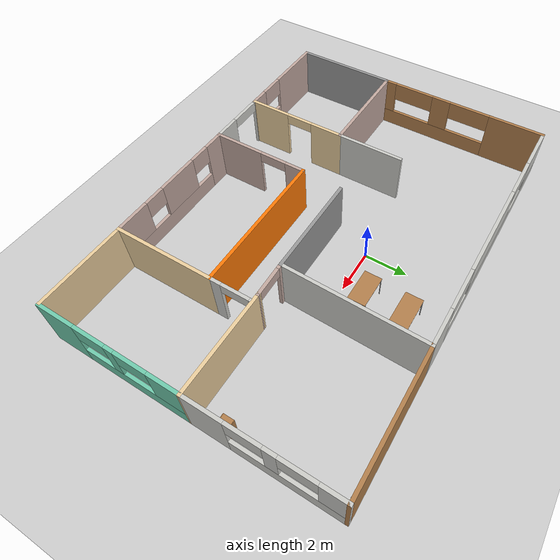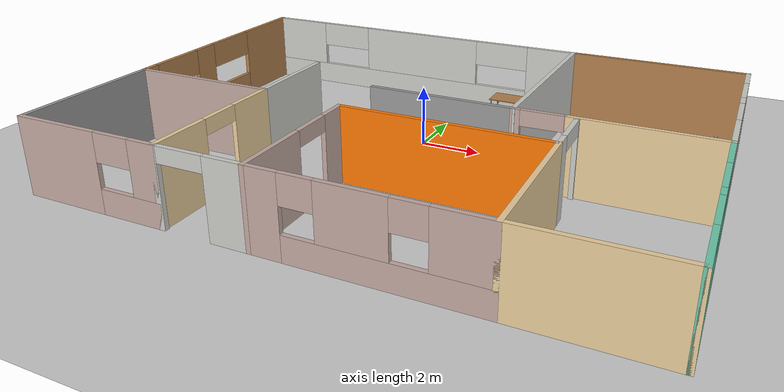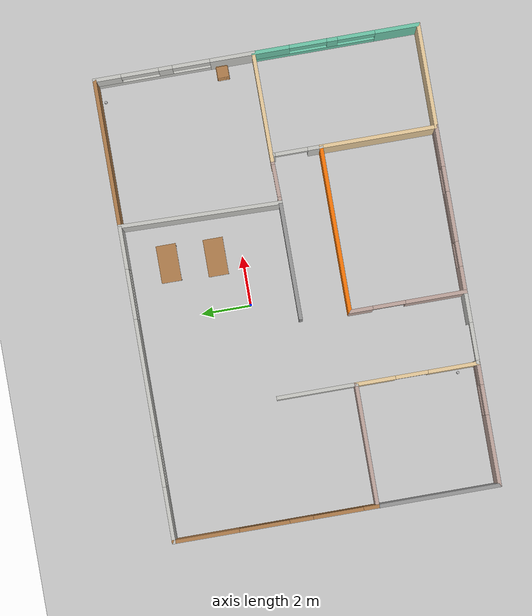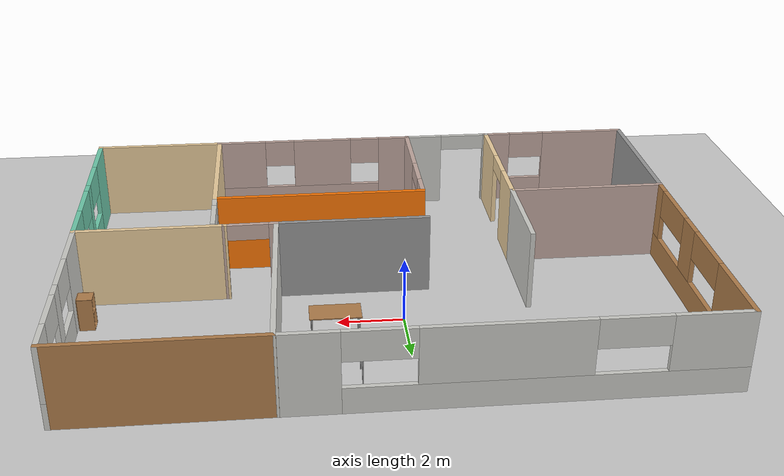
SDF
<sdf version="1.7">
 <world name="default">
  <light name="sun" type="directional">
   <pose>0 0 10 0 -0 0</pose>
   <diffuse>0.8 0.8 0.8 1</diffuse>
   <specular>0.2 0.2 0.2 1</specular>
   <attenuation>
    <range>1000</range>
    <constant>0.9</constant>
    <linear>0.01</linear>
    <quadratic>0.001</quadratic>
   </attenuation>
   <direction>-0.5 0.1 -0.9</direction>
   <spot><inner_angle>0</inner_angle><outer_angle>0</outer_angle><falloff>0</falloff></spot>
  </light>
  <model name="ground_plane">
   <static>1</static>
   <link name="link">
    <collision name="collision">
     <geometry><plane><normal>0 0 1</normal><size>100 100</size></plane></geometry>
     <surface>
      <contact><collide_bitmask>65535</collide_bitmask></contact>
      <friction><ode><mu>100</mu><mu2>50</mu2></ode></friction>
     </surface>
    </collision>
    <visual name="visual">
     <cast_shadows>0</cast_shadows>
     <geometry><plane><normal>0 0 1</normal><size>100 100</size></plane></geometry>
     <material>
      <script><uri>file://media/materials/scripts/gazebo.material</uri><name>Gazebo/Grey</name></script>
     </material>
    </visual>
   </link>
  </model>
  <gravity>0 0 -9.8</gravity>
  <magnetic_field>6e-06 2.3e-05 -4.2e-05</magnetic_field>
  <atmosphere type="adiabatic"/>
  <physics type="ode">
   <max_step_size>0.001</max_step_size>
   <real_time_factor>1</real_time_factor>
   <real_time_update_rate>1000</real_time_update_rate>
  </physics>
  <scene><ambient>0.4 0.4 0.4 1</ambient><background>0.7 0.7 0.7 1</background><shadows>1</shadows></scene>
  <spherical_coordinates>
   <surface_model>EARTH_WGS84</surface_model>
   <latitude_deg>0</latitude_deg>
   <longitude_deg>0</longitude_deg>
   <elevation>0</elevation>
   <heading_deg>0</heading_deg>
  </spherical_coordinates>
  <model name="NewBuilding">
   <pose>0.49773 -1.92823 0 0 -0 0</pose>
   <link name="Wall_0">
    <pose>-9.20011 2.42413 0 0 -0 -1.5708</pose>
    <visual name="Wall_0_Visual_0">
     <pose>-2.78268 0 1.25 0 -0 0</pose>
     <geometry><box><size>2.68465 0.15 2.5</size></box></geometry>
     <material>
      <script><uri>file://media/materials/scripts/gazebo.material</uri><name>Gazebo/Wood</name></script>
      <ambient>0.435294 0.796078 0.67451 1</ambient>
     </material>
     <meta><layer>0</layer></meta>
    </visual>
    <collision name="Wall_0_Collision_0">
     <geometry><box><size>2.68465 0.15 2.5</size></box></geometry>
     <pose>-2.78268 0 1.25 0 -0 0</pose>
    </collision>
    <visual name="Wall_0_Visual_1">
     <pose>1.34232 0 0.4 0 -0 0</pose>
     <geometry><box><size>5.56535 0.15 0.8</size></box></geometry>
     <material>
      <script><uri>file://media/materials/scripts/gazebo.material</uri><name>Gazebo/Wood</name></script>
      <ambient>0.435294 0.796078 0.67451 1</ambient>
     </material>
     <meta><layer>0</layer></meta>
    </visual>
    <collision name="Wall_0_Collision_1">
     <geometry><box><size>5.56535 0.15 0.8</size></box></geometry>
     <pose>1.34232 0 0.4 0 -0 0</pose>
    </collision>
    <visual name="Wall_0_Visual_2">
     <pose>1.02798 0 1.65 0 -0 0</pose>
     <geometry><box><size>0.936662 0.15 1.7</size></box></geometry>
     <material>
      <script><uri>file://media/materials/scripts/gazebo.material</uri><name>Gazebo/Wood</name></script>
      <ambient>0.435294 0.796078 0.67451 1</ambient>
     </material>
     <meta><layer>0</layer></meta>
    </visual>
    <collision name="Wall_0_Collision_2">
     <geometry><box><size>0.936662 0.15 1.7</size></box></geometry>
     <pose>1.02798 0 1.65 0 -0 0</pose>
    </collision>
    <visual name="Wall_0_Visual_3">
     <pose>3.81065 0 1.65 0 -0 0</pose>
     <geometry><box><size>0.628691 0.15 1.7</size></box></geometry>
     <material>
      <script><uri>file://media/materials/scripts/gazebo.material</uri><name>Gazebo/Wood</name></script>
      <ambient>0.435294 0.796078 0.67451 1</ambient>
     </material>
     <meta><layer>0</layer></meta>
    </visual>
    <collision name="Wall_0_Collision_3">
     <geometry><box><size>0.628691 0.15 1.7</size></box></geometry>
     <pose>3.81065 0 1.65 0 -0 0</pose>
    </collision>
    <visual name="Wall_0_Visual_4">
     <pose>-0.440353 0 2.05 0 -0 0</pose>
     <geometry><box><size>2 0.15 0.9</size></box></geometry>
     <material>
      <script><uri>file://media/materials/scripts/gazebo.material</uri><name>Gazebo/Wood</name></script>
      <ambient>0.435294 0.796078 0.67451 1</ambient>
     </material>
     <meta><layer>0</layer></meta>
    </visual>
    <collision name="Wall_0_Collision_4">
     <geometry><box><size>2 0.15 0.9</size></box></geometry>
     <pose>-0.440353 0 2.05 0 -0 0</pose>
    </collision>
    <visual name="Wall_0_Visual_5">
     <pose>2.49631 0 2.05 0 -0 0</pose>
     <geometry><box><size>2 0.15 0.9</size></box></geometry>
     <material>
      <script><uri>file://media/materials/scripts/gazebo.material</uri><name>Gazebo/Wood</name></script>
      <ambient>0.435294 0.796078 0.67451 1</ambient>
     </material>
     <meta><layer>0</layer></meta>
    </visual>
    <collision name="Wall_0_Collision_5">
     <geometry><box><size>2 0.15 0.9</size></box></geometry>
     <pose>2.49631 0 2.05 0 -0 0</pose>
    </collision>
   </link>
   <link name="Wall_1">
    <collision name="Wall_1_Collision">
     <geometry><box><size>5 0.15 2.5</size></box></geometry>
     <pose>0 0 1.25 0 -0 0</pose>
    </collision>
    <visual name="Wall_1_Visual">
     <pose>0 0 1.25 0 -0 0</pose>
     <geometry><box><size>5 0.15 2.5</size></box></geometry>
     <material>
      <script><uri>file://media/materials/scripts/gazebo.material</uri><name>Gazebo/Grey</name></script>
      <ambient>0.180392 0.203922 0.211765 1</ambient>
     </material>
     <meta><layer>0</layer></meta>
    </visual>
    <pose>-9.20011 -4.05087 0 0 -0 -1.5708</pose>
   </link>
   <link name="Wall_11">
    <collision name="Wall_11_Collision">
     <geometry><box><size>5 0.15 2.5</size></box></geometry>
     <pose>0 0 1.25 0 -0 0</pose>
    </collision>
    <visual name="Wall_11_Visual">
     <pose>0 0 1.25 0 -0 0</pose>
     <geometry><box><size>5 0.15 2.5</size></box></geometry>
     <material>
      <script><uri>file://media/materials/scripts/gazebo.material</uri><name>Gazebo/Grey</name></script>
      <ambient>0.760784 0.662745 0.627451 1</ambient>
     </material>
     <meta><layer>0</layer></meta>
    </visual>
    <pose>-6.77511 -1.62587 0 0 -0 0</pose>
   </link>
   <link name="Wall_12">
    <pose>-4.35011 -4.05087 0 0 -0 -1.5708</pose>
    <visual name="Wall_12_Visual_0">
     <pose>-1.68305 0 1.25 0 -0 0</pose>
     <geometry><box><size>1.63391 0.15 2.5</size></box></geometry>
     <material>
      <script><uri>file://media/materials/scripts/gazebo.material</uri><name>Gazebo/Grey</name></script>
      <ambient>0.921569 0.807843 0.615686 1</ambient>
     </material>
     <meta><layer>0</layer></meta>
    </visual>
    <collision name="Wall_12_Collision_0">
     <geometry><box><size>1.63391 0.15 2.5</size></box></geometry>
     <pose>-1.68305 0 1.25 0 -0 0</pose>
    </collision>
    <visual name="Wall_12_Visual_1">
     <pose>1.46695 0 1.25 0 -0 0</pose>
     <geometry><box><size>2.06609 0.15 2.5</size></box></geometry>
     <material>
      <script><uri>file://media/materials/scripts/gazebo.material</uri><name>Gazebo/Grey</name></script>
      <ambient>0.921569 0.807843 0.615686 1</ambient>
     </material>
     <meta><layer>0</layer></meta>
    </visual>
    <collision name="Wall_12_Collision_1">
     <geometry><box><size>2.06609 0.15 2.5</size></box></geometry>
     <pose>1.46695 0 1.25 0 -0 0</pose>
    </collision>
    <visual name="Wall_12_Visual_2">
     <pose>-0.216093 0 2.25 0 -0 0</pose>
     <geometry><box><size>1.3 0.15 0.5</size></box></geometry>
     <material>
      <script><uri>file://media/materials/scripts/gazebo.material</uri><name>Gazebo/Grey</name></script>
      <ambient>0.921569 0.807843 0.615686 1</ambient>
     </material>
     <meta><layer>0</layer></meta>
    </visual>
    <collision name="Wall_12_Collision_2">
     <geometry><box><size>1.3 0.15 0.5</size></box></geometry>
     <pose>-0.216093 0 2.25 0 -0 0</pose>
    </collision>
   </link>
   <link name="Wall_14">
    <collision name="Wall_14_Collision">
     <geometry><box><size>3.25 0.15 2.5</size></box></geometry>
     <pose>0 0 1.25 0 -0 0</pose>
    </collision>
    <visual name="Wall_14_Visual">
     <pose>0 0 1.25 0 -0 0</pose>
     <geometry><box><size>3.25 0.15 2.5</size></box></geometry>
     <material>
      <script><uri>file://media/materials/scripts/gazebo.material</uri><name>Gazebo/CeilingTiled</name></script>
      <ambient>0.996078 0.47451 0.0196078 1</ambient>
     </material>
     <meta><layer>0</layer></meta>
    </visual>
    <pose>-4.35011 -0.075866 0 0 -0 1.5708</pose>
   </link>
   <link name="Wall_16">
    <pose>-1.50011 -4.17587 0 0 -0 1.5708</pose>
    <visual name="Wall_16_Visual_0">
     <pose>-1.14312 0 1.25 0 -0 0</pose>
     <geometry><box><size>2.46377 0.15 2.5</size></box></geometry>
     <material>
      <script><uri>file://media/materials/scripts/gazebo.material</uri><name>Gazebo/Grey</name></script>
      <ambient>0.760784 0.662745 0.627451 1</ambient>
     </material>
     <meta><layer>0</layer></meta>
    </visual>
    <collision name="Wall_16_Collision_0">
     <geometry><box><size>2.46377 0.15 2.5</size></box></geometry>
     <pose>-1.14312 0 1.25 0 -0 0</pose>
    </collision>
    <visual name="Wall_16_Visual_1">
     <pose>1.88188 0 1.25 0 -0 0</pose>
     <geometry><box><size>0.986234 0.15 2.5</size></box></geometry>
     <material>
      <script><uri>file://media/materials/scripts/gazebo.material</uri><name>Gazebo/Grey</name></script>
      <ambient>0.760784 0.662745 0.627451 1</ambient>
     </material>
     <meta><layer>0</layer></meta>
    </visual>
    <collision name="Wall_16_Collision_1">
     <geometry><box><size>0.986234 0.15 2.5</size></box></geometry>
     <pose>1.88188 0 1.25 0 -0 0</pose>
    </collision>
    <visual name="Wall_16_Visual_2">
     <pose>0.738766 0 2.25 0 -0 0</pose>
     <geometry><box><size>1.3 0.15 0.5</size></box></geometry>
     <material>
      <script><uri>file://media/materials/scripts/gazebo.material</uri><name>Gazebo/Grey</name></script>
      <ambient>0.760784 0.662745 0.627451 1</ambient>
     </material>
     <meta><layer>0</layer></meta>
    </visual>
    <collision name="Wall_16_Collision_2">
     <geometry><box><size>1.3 0.15 0.5</size></box></geometry>
     <pose>0.738766 0 2.25 0 -0 0</pose>
    </collision>
   </link>
   <link name="Wall_17">
    <collision name="Wall_17_Collision">
     <geometry><box><size>6.75 0.15 2.5</size></box></geometry>
     <pose>0 0 1.25 0 -0 0</pose>
    </collision>
    <visual name="Wall_17_Visual">
     <pose>0 0 1.25 0 -0 0</pose>
     <geometry><box><size>6.75 0.15 2.5</size></box></geometry>
     <material>
      <script><uri>file://media/materials/scripts/gazebo.material</uri><name>Gazebo/Grey</name></script>
      <ambient>0.996078 0.47451 0.0196078 1</ambient>
     </material>
     <meta><layer>0</layer></meta>
    </visual>
    <pose>1.79989 -1.87587 0 0 -0 0</pose>
   </link>
   <link name="Wall_18">
    <collision name="Wall_18_Collision">
     <geometry><box><size>4.75 0.15 2.5</size></box></geometry>
     <pose>0 0 1.25 0 -0 0</pose>
    </collision>
    <visual name="Wall_18_Visual">
     <pose>0 0 1.25 0 -0 0</pose>
     <geometry><box><size>4.75 0.15 2.5</size></box></geometry>
     <material>
      <script><uri>file://media/materials/scripts/gazebo.material</uri><name>Gazebo/Grey</name></script>
      <ambient>0.921569 0.807843 0.615686 1</ambient>
     </material>
     <meta><layer>0</layer></meta>
    </visual>
    <pose>5.09989 -4.17587 0 0 -0 -1.5708</pose>
   </link>
   <link name="Wall_2">
    <pose>-6.77511 -6.47587 0 0 -0 0</pose>
    <visual name="Wall_2_Visual_0">
     <pose>-1.06474 0 1.25 0 -0 0</pose>
     <geometry><box><size>2.87052 0.15 2.5</size></box></geometry>
     <material>
      <script><uri>file://media/materials/scripts/gazebo.material</uri><name>Gazebo/Grey</name></script>
      <ambient>0.760784 0.662745 0.627451 1</ambient>
     </material>
     <meta><layer>0</layer></meta>
    </visual>
    <collision name="Wall_2_Collision_0">
     <geometry><box><size>2.87052 0.15 2.5</size></box></geometry>
     <pose>-1.06474 0 1.25 0 -0 0</pose>
    </collision>
    <visual name="Wall_2_Visual_1">
     <pose>1.43526 0 0.4 0 -0 0</pose>
     <geometry><box><size>2.12948 0.15 0.8</size></box></geometry>
     <material>
      <script><uri>file://media/materials/scripts/gazebo.material</uri><name>Gazebo/Grey</name></script>
      <ambient>0.760784 0.662745 0.627451 1</ambient>
     </material>
     <meta><layer>0</layer></meta>
    </visual>
    <collision name="Wall_2_Collision_1">
     <geometry><box><size>2.12948 0.15 0.8</size></box></geometry>
     <pose>1.43526 0 0.4 0 -0 0</pose>
    </collision>
    <visual name="Wall_2_Visual_2">
     <pose>2.03526 0 1.65 0 -0 0</pose>
     <geometry><box><size>0.929485 0.15 1.7</size></box></geometry>
     <material>
      <script><uri>file://media/materials/scripts/gazebo.material</uri><name>Gazebo/Grey</name></script>
      <ambient>0.760784 0.662745 0.627451 1</ambient>
     </material>
     <meta><layer>0</layer></meta>
    </visual>
    <collision name="Wall_2_Collision_2">
     <geometry><box><size>0.929485 0.15 1.7</size></box></geometry>
     <pose>2.03526 0 1.65 0 -0 0</pose>
    </collision>
    <visual name="Wall_2_Visual_3">
     <pose>0.970515 0 2.05 0 -0 0</pose>
     <geometry><box><size>1.2 0.15 0.9</size></box></geometry>
     <material>
      <script><uri>file://media/materials/scripts/gazebo.material</uri><name>Gazebo/Grey</name></script>
      <ambient>0.760784 0.662745 0.627451 1</ambient>
     </material>
     <meta><layer>0</layer></meta>
    </visual>
    <collision name="Wall_2_Collision_3">
     <geometry><box><size>1.2 0.15 0.9</size></box></geometry>
     <pose>0.970515 0 2.05 0 -0 0</pose>
    </collision>
   </link>
   <link name="Wall_20">
    <collision name="Wall_20_Collision">
     <geometry><box><size>4.75 0.15 2.5</size></box></geometry>
     <pose>0 0 1.25 0 -0 0</pose>
    </collision>
    <visual name="Wall_20_Visual">
     <pose>0 0 1.25 0 -0 0</pose>
     <geometry><box><size>4.75 0.15 2.5</size></box></geometry>
     <material>
      <script><uri>file://media/materials/scripts/gazebo.material</uri><name>Gazebo/Grey</name></script>
      <ambient>1 1 1 1</ambient>
     </material>
     <meta><layer>0</layer></meta>
    </visual>
    <pose>0.900401 0.080776 0 0 -0 0</pose>
   </link>
   <link name="Wall_21">
    <collision name="Wall_21_Collision">
     <geometry><box><size>6.54511 0.15 2.5</size></box></geometry>
     <pose>0 0 1.25 0 -0 0</pose>
    </collision>
    <visual name="Wall_21_Visual">
     <pose>0 0 1.25 0 -0 0</pose>
     <geometry><box><size>6.54511 0.15 2.5</size></box></geometry>
     <material>
      <script><uri>file://media/materials/scripts/gazebo.material</uri><name>Gazebo/CeilingTiled</name></script>
      <ambient>0.996078 0.47451 0.0196078 1</ambient>
     </material>
     <meta><layer>0</layer></meta>
    </visual>
    <pose>3.27515 3.27745 0 0 -0 1.54742</pose>
   </link>
   <link name="Wall_23">
    <collision name="Wall_23_Collision">
     <geometry><box><size>4.60087 0.15 2.5</size></box></geometry>
     <pose>0 0 1.25 0 -0 0</pose>
    </collision>
    <visual name="Wall_23_Visual">
     <pose>0 0 1.25 0 -0 0</pose>
     <geometry><box><size>4.60087 0.15 2.5</size></box></geometry>
     <material>
      <script><uri>file://media/materials/scripts/gazebo.material</uri><name>Gazebo/Grey</name></script>
      <ambient>0.921569 0.807843 0.615686 1</ambient>
     </material>
     <meta><layer>0</layer></meta>
    </visual>
    <pose>6.97447 0.11775 0 0 -0 0.002869</pose>
   </link>
   <link name="Wall_25">
    <pose>3.97472 0.096071 0 0 -0 -3.12184</pose>
    <visual name="Wall_25_Visual_0">
     <pose>-0.80024 0 1.25 0 -0 0</pose>
     <geometry><box><size>0.098458 0.15 2.5</size></box></geometry>
     <material>
      <script><uri>file://media/materials/scripts/gazebo.material</uri><name>Gazebo/Grey</name></script>
      <ambient>0.760784 0.662745 0.627451 1</ambient>
     </material>
     <meta><layer>0</layer></meta>
    </visual>
    <collision name="Wall_25_Collision_0">
     <geometry><box><size>0.098458 0.15 2.5</size></box></geometry>
     <pose>-0.80024 0 1.25 0 -0 0</pose>
    </collision>
    <visual name="Wall_25_Visual_1">
     <pose>0.699229 0 1.25 0 -0 0</pose>
     <geometry><box><size>0.30048 0.15 2.5</size></box></geometry>
     <material>
      <script><uri>file://media/materials/scripts/gazebo.material</uri><name>Gazebo/Grey</name></script>
      <ambient>0.760784 0.662745 0.627451 1</ambient>
     </material>
     <meta><layer>0</layer></meta>
    </visual>
    <collision name="Wall_25_Collision_1">
     <geometry><box><size>0.30048 0.15 2.5</size></box></geometry>
     <pose>0.699229 0 1.25 0 -0 0</pose>
    </collision>
    <visual name="Wall_25_Visual_2">
     <pose>-0.101011 0 2.25 0 -0 0</pose>
     <geometry><box><size>1.3 0.15 0.5</size></box></geometry>
     <material>
      <script><uri>file://media/materials/scripts/gazebo.material</uri><name>Gazebo/Grey</name></script>
      <ambient>0.760784 0.662745 0.627451 1</ambient>
     </material>
     <meta><layer>0</layer></meta>
    </visual>
    <collision name="Wall_25_Collision_2">
     <geometry><box><size>1.3 0.15 0.5</size></box></geometry>
     <pose>-0.101011 0 2.25 0 -0 0</pose>
    </collision>
   </link>
   <link name="Wall_28">
    <pose>5.09989 -0.950866 0 0 -0 1.5708</pose>
    <visual name="Wall_28_Visual_0">
     <pose>-0.691557 0 1.25 0 -0 0</pose>
     <geometry><box><size>0.616886 0.15 2.5</size></box></geometry>
     <material>
      <script><uri>file://media/materials/scripts/gazebo.material</uri><name>Gazebo/CeilingTiled</name></script>
      <ambient>0.921569 0.807843 0.615686 1</ambient>
     </material>
     <meta><layer>0</layer></meta>
    </visual>
    <collision name="Wall_28_Collision_0">
     <geometry><box><size>0.616886 0.15 2.5</size></box></geometry>
     <pose>-0.691557 0 1.25 0 -0 0</pose>
    </collision>
    <visual name="Wall_28_Visual_1">
     <pose>0.958443 0 1.25 0 -0 0</pose>
     <geometry><box><size>0.083114 0.15 2.5</size></box></geometry>
     <material>
      <script><uri>file://media/materials/scripts/gazebo.material</uri><name>Gazebo/CeilingTiled</name></script>
      <ambient>0.921569 0.807843 0.615686 1</ambient>
     </material>
     <meta><layer>0</layer></meta>
    </visual>
    <collision name="Wall_28_Collision_1">
     <geometry><box><size>0.083114 0.15 2.5</size></box></geometry>
     <pose>0.958443 0 1.25 0 -0 0</pose>
    </collision>
    <visual name="Wall_28_Visual_2">
     <pose>0.266886 0 2.25 0 -0 0</pose>
     <geometry><box><size>1.3 0.15 0.5</size></box></geometry>
     <material>
      <script><uri>file://media/materials/scripts/gazebo.material</uri><name>Gazebo/CeilingTiled</name></script>
      <ambient>0.921569 0.807843 0.615686 1</ambient>
     </material>
     <meta><layer>0</layer></meta>
    </visual>
    <collision name="Wall_28_Collision_2">
     <geometry><box><size>1.3 0.15 0.5</size></box></geometry>
     <pose>0.266886 0 2.25 0 -0 0</pose>
    </collision>
   </link>
   <link name="Wall_3">
    <pose>-2.92511 -6.47587 0 0 -0 0</pose>
    <visual name="Wall_3_Visual_0">
     <pose>-1.40231 0 1.25 0 -0 0</pose>
     <geometry><box><size>0.195373 0.15 2.5</size></box></geometry>
     <material>
      <script><uri>file://media/materials/scripts/gazebo.material</uri><name>Gazebo/CeilingTiled</name></script>
      <ambient>0.435294 0.796078 0.67451 1</ambient>
     </material>
     <meta><layer>0</layer></meta>
    </visual>
    <collision name="Wall_3_Collision_0">
     <geometry><box><size>0.195373 0.15 2.5</size></box></geometry>
     <pose>-1.40231 0 1.25 0 -0 0</pose>
    </collision>
    <visual name="Wall_3_Visual_1">
     <pose>0.847686 0 1.25 0 -0 0</pose>
     <geometry><box><size>1.30463 0.15 2.5</size></box></geometry>
     <material>
      <script><uri>file://media/materials/scripts/gazebo.material</uri><name>Gazebo/CeilingTiled</name></script>
      <ambient>0.435294 0.796078 0.67451 1</ambient>
     </material>
     <meta><layer>0</layer></meta>
    </visual>
    <collision name="Wall_3_Collision_1">
     <geometry><box><size>1.30463 0.15 2.5</size></box></geometry>
     <pose>0.847686 0 1.25 0 -0 0</pose>
    </collision>
    <visual name="Wall_3_Visual_2">
     <pose>-0.554627 0 2.25 0 -0 0</pose>
     <geometry><box><size>1.5 0.15 0.5</size></box></geometry>
     <material>
      <script><uri>file://media/materials/scripts/gazebo.material</uri><name>Gazebo/CeilingTiled</name></script>
      <ambient>0.435294 0.796078 0.67451 1</ambient>
     </material>
     <meta><layer>0</layer></meta>
    </visual>
    <collision name="Wall_3_Collision_2">
     <geometry><box><size>1.5 0.15 0.5</size></box></geometry>
     <pose>-0.554627 0 2.25 0 -0 0</pose>
    </collision>
   </link>
   <link name="Wall_4">
    <pose>1.79989 -6.47587 0 0 -0 0</pose>
    <visual name="Wall_4_Visual_0">
     <pose>-2.83367 0 1.25 0 -0 0</pose>
     <geometry><box><size>1.08266 0.15 2.5</size></box></geometry>
     <material>
      <script><uri>file://media/materials/scripts/gazebo.material</uri><name>Gazebo/Grey</name></script>
      <ambient>0.760784 0.662745 0.627451 1</ambient>
     </material>
     <meta><layer>0</layer></meta>
    </visual>
    <collision name="Wall_4_Collision_0">
     <geometry><box><size>1.08266 0.15 2.5</size></box></geometry>
     <pose>-2.83367 0 1.25 0 -0 0</pose>
    </collision>
    <visual name="Wall_4_Visual_1">
     <pose>0.541329 0 0.4 0 -0 0</pose>
     <geometry><box><size>5.66734 0.15 0.8</size></box></geometry>
     <material>
      <script><uri>file://media/materials/scripts/gazebo.material</uri><name>Gazebo/Grey</name></script>
      <ambient>0.760784 0.662745 0.627451 1</ambient>
     </material>
     <meta><layer>0</layer></meta>
    </visual>
    <collision name="Wall_4_Collision_1">
     <geometry><box><size>5.66734 0.15 0.8</size></box></geometry>
     <pose>0.541329 0 0.4 0 -0 0</pose>
    </collision>
    <visual name="Wall_4_Visual_2">
     <pose>-0.29342 0 1.65 0 -0 0</pose>
     <geometry><box><size>1.99784 0.15 1.7</size></box></geometry>
     <material>
      <script><uri>file://media/materials/scripts/gazebo.material</uri><name>Gazebo/Grey</name></script>
      <ambient>0.760784 0.662745 0.627451 1</ambient>
     </material>
     <meta><layer>0</layer></meta>
    </visual>
    <collision name="Wall_4_Collision_2">
     <geometry><box><size>1.99784 0.15 1.7</size></box></geometry>
     <pose>-0.29342 0 1.65 0 -0 0</pose>
    </collision>
    <visual name="Wall_4_Visual_3">
     <pose>2.54025 0 1.65 0 -0 0</pose>
     <geometry><box><size>1.6695 0.15 1.7</size></box></geometry>
     <material>
      <script><uri>file://media/materials/scripts/gazebo.material</uri><name>Gazebo/Grey</name></script>
      <ambient>0.760784 0.662745 0.627451 1</ambient>
     </material>
     <meta><layer>0</layer></meta>
    </visual>
    <collision name="Wall_4_Collision_3">
     <geometry><box><size>1.6695 0.15 1.7</size></box></geometry>
     <pose>2.54025 0 1.65 0 -0 0</pose>
    </collision>
    <visual name="Wall_4_Visual_4">
     <pose>-1.79234 0 2.05 0 -0 0</pose>
     <geometry><box><size>1 0.15 0.9</size></box></geometry>
     <material>
      <script><uri>file://media/materials/scripts/gazebo.material</uri><name>Gazebo/Grey</name></script>
      <ambient>0.760784 0.662745 0.627451 1</ambient>
     </material>
     <meta><layer>0</layer></meta>
    </visual>
    <collision name="Wall_4_Collision_4">
     <geometry><box><size>1 0.15 0.9</size></box></geometry>
     <pose>-1.79234 0 2.05 0 -0 0</pose>
    </collision>
    <visual name="Wall_4_Visual_5">
     <pose>1.2055 0 2.05 0 -0 0</pose>
     <geometry><box><size>1 0.15 0.9</size></box></geometry>
     <material>
      <script><uri>file://media/materials/scripts/gazebo.material</uri><name>Gazebo/Grey</name></script>
      <ambient>0.760784 0.662745 0.627451 1</ambient>
     </material>
     <meta><layer>0</layer></meta>
    </visual>
    <collision name="Wall_4_Collision_5">
     <geometry><box><size>1 0.15 0.9</size></box></geometry>
     <pose>1.2055 0 2.05 0 -0 0</pose>
    </collision>
   </link>
   <link name="Wall_5">
    <collision name="Wall_5_Collision">
     <geometry><box><size>4.25 0.15 2.5</size></box></geometry>
     <pose>0 0 1.25 0 -0 0</pose>
    </collision>
    <visual name="Wall_5_Visual">
     <pose>0 0 1.25 0 -0 0</pose>
     <geometry><box><size>4.25 0.15 2.5</size></box></geometry>
     <material>
      <script><uri>file://media/materials/scripts/gazebo.material</uri><name>Gazebo/Grey</name></script>
      <ambient>0.921569 0.807843 0.615686 1</ambient>
     </material>
     <meta><layer>0</layer></meta>
    </visual>
    <pose>7.14989 -6.47587 0 0 -0 0</pose>
   </link>
   <link name="Wall_6">
    <pose>9.19989 -3.17587 0 0 -0 1.5708</pose>
    <visual name="Wall_6_Visual_0">
     <pose>-2.46843 0 1.25 0 -0 0</pose>
     <geometry><box><size>1.81314 0.15 2.5</size></box></geometry>
     <material>
      <script><uri>file://media/materials/scripts/gazebo.material</uri><name>Gazebo/Grey</name></script>
      <ambient>0.435294 0.796078 0.67451 1</ambient>
     </material>
     <meta><layer>0</layer></meta>
    </visual>
    <collision name="Wall_6_Collision_0">
     <geometry><box><size>1.81314 0.15 2.5</size></box></geometry>
     <pose>-2.46843 0 1.25 0 -0 0</pose>
    </collision>
    <visual name="Wall_6_Visual_1">
     <pose>0.906571 0 0.4 0 -0 0</pose>
     <geometry><box><size>4.93686 0.15 0.8</size></box></geometry>
     <material>
      <script><uri>file://media/materials/scripts/gazebo.material</uri><name>Gazebo/Grey</name></script>
      <ambient>0.435294 0.796078 0.67451 1</ambient>
     </material>
     <meta><layer>0</layer></meta>
    </visual>
    <collision name="Wall_6_Collision_1">
     <geometry><box><size>4.93686 0.15 0.8</size></box></geometry>
     <pose>0.906571 0 0.4 0 -0 0</pose>
    </collision>
    <visual name="Wall_6_Visual_2">
     <pose>0.151734 0 1.65 0 -0 0</pose>
     <geometry><box><size>0.427184 0.15 1.7</size></box></geometry>
     <material>
      <script><uri>file://media/materials/scripts/gazebo.material</uri><name>Gazebo/Grey</name></script>
      <ambient>0.435294 0.796078 0.67451 1</ambient>
     </material>
     <meta><layer>0</layer></meta>
    </visual>
    <collision name="Wall_6_Collision_2">
     <geometry><box><size>0.427184 0.15 1.7</size></box></geometry>
     <pose>0.151734 0 1.65 0 -0 0</pose>
    </collision>
    <visual name="Wall_6_Visual_3">
     <pose>2.62016 0 1.65 0 -0 0</pose>
     <geometry><box><size>1.50967 0.15 1.7</size></box></geometry>
     <material>
      <script><uri>file://media/materials/scripts/gazebo.material</uri><name>Gazebo/Grey</name></script>
      <ambient>0.435294 0.796078 0.67451 1</ambient>
     </material>
     <meta><layer>0</layer></meta>
    </visual>
    <collision name="Wall_6_Collision_3">
     <geometry><box><size>1.50967 0.15 1.7</size></box></geometry>
     <pose>2.62016 0 1.65 0 -0 0</pose>
    </collision>
    <visual name="Wall_6_Visual_4">
     <pose>-0.811858 0 2.05 0 -0 0</pose>
     <geometry><box><size>1.5 0.15 0.9</size></box></geometry>
     <material>
      <script><uri>file://media/materials/scripts/gazebo.material</uri><name>Gazebo/Grey</name></script>
      <ambient>0.435294 0.796078 0.67451 1</ambient>
     </material>
     <meta><layer>0</layer></meta>
    </visual>
    <collision name="Wall_6_Collision_4">
     <geometry><box><size>1.5 0.15 0.9</size></box></geometry>
     <pose>-0.811858 0 2.05 0 -0 0</pose>
    </collision>
    <visual name="Wall_6_Visual_5">
     <pose>1.11533 0 2.05 0 -0 0</pose>
     <geometry><box><size>1.5 0.15 0.9</size></box></geometry>
     <material>
      <script><uri>file://media/materials/scripts/gazebo.material</uri><name>Gazebo/Grey</name></script>
      <ambient>0.435294 0.796078 0.67451 1</ambient>
     </material>
     <meta><layer>0</layer></meta>
    </visual>
    <collision name="Wall_6_Collision_5">
     <geometry><box><size>1.5 0.15 0.9</size></box></geometry>
     <pose>1.11533 0 2.05 0 -0 0</pose>
    </collision>
   </link>
   <link name="Wall_7">
    <pose>9.19989 3.29913 0 0 -0 1.5708</pose>
    <visual name="Wall_7_Visual_0">
     <pose>-2.33968 0 1.25 0 -0 0</pose>
     <geometry><box><size>1.82063 0.15 2.5</size></box></geometry>
     <material>
      <script><uri>file://media/materials/scripts/gazebo.material</uri><name>Gazebo/CeilingTiled</name></script>
      <ambient>0.760784 0.662745 0.627451 1</ambient>
     </material>
     <meta><layer>0</layer></meta>
    </visual>
    <collision name="Wall_7_Collision_0">
     <geometry><box><size>1.82063 0.15 2.5</size></box></geometry>
     <pose>-2.33968 0 1.25 0 -0 0</pose>
    </collision>
    <visual name="Wall_7_Visual_1">
     <pose>0.910316 0 0.4 0 -0 0</pose>
     <geometry><box><size>4.67937 0.15 0.8</size></box></geometry>
     <material>
      <script><uri>file://media/materials/scripts/gazebo.material</uri><name>Gazebo/CeilingTiled</name></script>
      <ambient>0.760784 0.662745 0.627451 1</ambient>
     </material>
     <meta><layer>0</layer></meta>
    </visual>
    <collision name="Wall_7_Collision_1">
     <geometry><box><size>4.67937 0.15 0.8</size></box></geometry>
     <pose>0.910316 0 0.4 0 -0 0</pose>
    </collision>
    <visual name="Wall_7_Visual_2">
     <pose>0.345404 0 1.65 0 -0 0</pose>
     <geometry><box><size>0.549546 0.15 1.7</size></box></geometry>
     <material>
      <script><uri>file://media/materials/scripts/gazebo.material</uri><name>Gazebo/CeilingTiled</name></script>
      <ambient>0.760784 0.662745 0.627451 1</ambient>
     </material>
     <meta><layer>0</layer></meta>
    </visual>
    <collision name="Wall_7_Collision_2">
     <geometry><box><size>0.549546 0.15 1.7</size></box></geometry>
     <pose>0.345404 0 1.65 0 -0 0</pose>
    </collision>
    <visual name="Wall_7_Visual_3">
     <pose>2.68509 0 1.65 0 -0 0</pose>
     <geometry><box><size>1.12982 0.15 1.7</size></box></geometry>
     <material>
      <script><uri>file://media/materials/scripts/gazebo.material</uri><name>Gazebo/CeilingTiled</name></script>
      <ambient>0.760784 0.662745 0.627451 1</ambient>
     </material>
     <meta><layer>0</layer></meta>
    </visual>
    <collision name="Wall_7_Collision_3">
     <geometry><box><size>1.12982 0.15 1.7</size></box></geometry>
     <pose>2.68509 0 1.65 0 -0 0</pose>
    </collision>
    <visual name="Wall_7_Visual_4">
     <pose>-0.679369 0 2.05 0 -0 0</pose>
     <geometry><box><size>1.5 0.15 0.9</size></box></geometry>
     <material>
      <script><uri>file://media/materials/scripts/gazebo.material</uri><name>Gazebo/CeilingTiled</name></script>
      <ambient>0.760784 0.662745 0.627451 1</ambient>
     </material>
     <meta><layer>0</layer></meta>
    </visual>
    <collision name="Wall_7_Collision_4">
     <geometry><box><size>1.5 0.15 0.9</size></box></geometry>
     <pose>-0.679369 0 2.05 0 -0 0</pose>
    </collision>
    <visual name="Wall_7_Visual_5">
     <pose>1.37018 0 2.05 0 -0 0</pose>
     <geometry><box><size>1.5 0.15 0.9</size></box></geometry>
     <material>
      <script><uri>file://media/materials/scripts/gazebo.material</uri><name>Gazebo/CeilingTiled</name></script>
      <ambient>0.760784 0.662745 0.627451 1</ambient>
     </material>
     <meta><layer>0</layer></meta>
    </visual>
    <collision name="Wall_7_Collision_5">
     <geometry><box><size>1.5 0.15 0.9</size></box></geometry>
     <pose>1.37018 0 2.05 0 -0 0</pose>
    </collision>
   </link>
   <link name="Wall_8">
    <collision name="Wall_8_Collision">
     <geometry><box><size>6 0.15 2.5</size></box></geometry>
     <pose>0 0 1.25 0 -0 0</pose>
    </collision>
    <visual name="Wall_8_Visual">
     <pose>0 0 1.25 0 -0 0</pose>
     <geometry><box><size>6 0.15 2.5</size></box></geometry>
     <material>
      <script><uri>file://media/materials/scripts/gazebo.material</uri><name>Gazebo/Wood</name></script>
      <ambient>1 1 1 1</ambient>
     </material>
     <meta><layer>0</layer></meta>
    </visual>
    <pose>6.27489 6.47413 0 0 -0 3.14159</pose>
   </link>
   <link name="Wall_9">
    <pose>-2.92511 6.47413 0 0 -0 3.14159</pose>
    <visual name="Wall_9_Visual_0">
     <pose>-5.46253 0 1.25 0 -0 0</pose>
     <geometry><box><size>1.77495 0.15 2.5</size></box></geometry>
     <material>
      <script><uri>file://media/materials/scripts/gazebo.material</uri><name>Gazebo/CeilingTiled</name></script>
      <ambient>0.435294 0.796078 0.67451 1</ambient>
     </material>
     <meta><layer>0</layer></meta>
    </visual>
    <collision name="Wall_9_Collision_0">
     <geometry><box><size>1.77495 0.15 2.5</size></box></geometry>
     <pose>-5.46253 0 1.25 0 -0 0</pose>
    </collision>
    <visual name="Wall_9_Visual_1">
     <pose>0.887473 0 0.4 0 -0 0</pose>
     <geometry><box><size>10.9251 0.15 0.8</size></box></geometry>
     <material>
      <script><uri>file://media/materials/scripts/gazebo.material</uri><name>Gazebo/CeilingTiled</name></script>
      <ambient>0.435294 0.796078 0.67451 1</ambient>
     </material>
     <meta><layer>0</layer></meta>
    </visual>
    <collision name="Wall_9_Collision_1">
     <geometry><box><size>10.9251 0.15 0.8</size></box></geometry>
     <pose>0.887473 0 0.4 0 -0 0</pose>
    </collision>
    <visual name="Wall_9_Visual_2">
     <pose>-0.240719 0 1.65 0 -0 0</pose>
     <geometry><box><size>4.66867 0.15 1.7</size></box></geometry>
     <material>
      <script><uri>file://media/materials/scripts/gazebo.material</uri><name>Gazebo/CeilingTiled</name></script>
      <ambient>0.435294 0.796078 0.67451 1</ambient>
     </material>
     <meta><layer>0</layer></meta>
    </visual>
    <collision name="Wall_9_Collision_2">
     <geometry><box><size>4.66867 0.15 1.7</size></box></geometry>
     <pose>-0.240719 0 1.65 0 -0 0</pose>
    </collision>
    <visual name="Wall_9_Visual_3">
     <pose>5.22181 0 1.65 0 -0 0</pose>
     <geometry><box><size>2.25638 0.15 1.7</size></box></geometry>
     <material>
      <script><uri>file://media/materials/scripts/gazebo.material</uri><name>Gazebo/CeilingTiled</name></script>
      <ambient>0.435294 0.796078 0.67451 1</ambient>
     </material>
     <meta><layer>0</layer></meta>
    </visual>
    <collision name="Wall_9_Collision_3">
     <geometry><box><size>2.25638 0.15 1.7</size></box></geometry>
     <pose>5.22181 0 1.65 0 -0 0</pose>
    </collision>
    <visual name="Wall_9_Visual_4">
     <pose>-3.57505 0 2.05 0 -0 0</pose>
     <geometry><box><size>2 0.15 0.9</size></box></geometry>
     <material>
      <script><uri>file://media/materials/scripts/gazebo.material</uri><name>Gazebo/CeilingTiled</name></script>
      <ambient>0.435294 0.796078 0.67451 1</ambient>
     </material>
     <meta><layer>0</layer></meta>
    </visual>
    <collision name="Wall_9_Collision_4">
     <geometry><box><size>2 0.15 0.9</size></box></geometry>
     <pose>-3.57505 0 2.05 0 -0 0</pose>
    </collision>
    <visual name="Wall_9_Visual_5">
     <pose>3.09362 0 2.05 0 -0 0</pose>
     <geometry><box><size>2 0.15 0.9</size></box></geometry>
     <material>
      <script><uri>file://media/materials/scripts/gazebo.material</uri><name>Gazebo/CeilingTiled</name></script>
      <ambient>0.435294 0.796078 0.67451 1</ambient>
     </material>
     <meta><layer>0</layer></meta>
    </visual>
    <collision name="Wall_9_Collision_5">
     <geometry><box><size>2 0.15 0.9</size></box></geometry>
     <pose>3.09362 0 2.05 0 -0 0</pose>
    </collision>
   </link>
   <static>1</static>
  </model>
  <model name="table">
   <static>1</static>
   <link name="link">
    <collision name="surface">
     <pose>0 0 1 0 -0 0</pose>
     <geometry><box><size>1.5 0.8 0.03</size></box></geometry>
     <surface><friction><ode><mu>0.6</mu><mu2>0.6</mu2></ode></friction></surface>
    </collision>
    <visual name="visual1">
     <pose>0 0 1 0 -0 0</pose>
     <geometry><box><size>1.5 0.8 0.03</size></box></geometry>
     <material>
      <script><uri>file://media/materials/scripts/gazebo.material</uri><name>Gazebo/Wood</name></script>
     </material>
    </visual>
    <collision name="front_left_leg">
     <pose>0.68 0.38 0.5 0 -0 0</pose>
     <geometry><cylinder><radius>0.02</radius><length>1</length></cylinder></geometry>
    </collision>
    <visual name="front_left_leg">
     <pose>0.68 0.38 0.5 0 -0 0</pose>
     <geometry><cylinder><radius>0.02</radius><length>1</length></cylinder></geometry>
     <material>
      <script><uri>file://media/materials/scripts/gazebo.material</uri><name>Gazebo/Grey</name></script>
     </material>
    </visual>
    <collision name="front_right_leg">
     <pose>0.68 -0.38 0.5 0 -0 0</pose>
     <geometry><cylinder><radius>0.02</radius><length>1</length></cylinder></geometry>
    </collision>
    <visual name="front_right_leg">
     <pose>0.68 -0.38 0.5 0 -0 0</pose>
     <geometry><cylinder><radius>0.02</radius><length>1</length></cylinder></geometry>
     <material>
      <script><uri>file://media/materials/scripts/gazebo.material</uri><name>Gazebo/Grey</name></script>
     </material>
    </visual>
    <collision name="back_right_leg">
     <pose>-0.68 -0.38 0.5 0 -0 0</pose>
     <geometry><cylinder><radius>0.02</radius><length>1</length></cylinder></geometry>
    </collision>
    <visual name="back_right_leg">
     <pose>-0.68 -0.38 0.5 0 -0 0</pose>
     <geometry><cylinder><radius>0.02</radius><length>1</length></cylinder></geometry>
     <material>
      <script><uri>file://media/materials/scripts/gazebo.material</uri><name>Gazebo/Grey</name></script>
     </material>
    </visual>
    <collision name="back_left_leg">
     <pose>-0.68 0.38 0.5 0 -0 0</pose>
     <geometry><cylinder><radius>0.02</radius><length>1</length></cylinder></geometry>
    </collision>
    <visual name="back_left_leg">
     <pose>-0.68 0.38 0.5 0 -0 0</pose>
     <geometry><cylinder><radius>0.02</radius><length>1</length></cylinder></geometry>
     <material>
      <script><uri>file://media/materials/scripts/gazebo.material</uri><name>Gazebo/Grey</name></script>
     </material>
    </visual>
   </link>
   <pose>2.17638 2.92674 0 0 -0 0</pose>
  </model>
  <model name="table_0">
   <static>1</static>
   <link name="link">
    <collision name="surface">
     <pose>0 0 1 0 -0 0</pose>
     <geometry><box><size>1.5 0.8 0.03</size></box></geometry>
     <surface><friction><ode><mu>0.6</mu><mu2>0.6</mu2></ode></friction></surface>
    </collision>
    <visual name="visual1">
     <pose>0 0 1 0 -0 0</pose>
     <geometry><box><size>1.5 0.8 0.03</size></box></geometry>
     <material>
      <script><uri>file://media/materials/scripts/gazebo.material</uri><name>Gazebo/Wood</name></script>
     </material>
    </visual>
    <collision name="front_left_leg">
     <pose>0.68 0.38 0.5 0 -0 0</pose>
     <geometry><cylinder><radius>0.02</radius><length>1</length></cylinder></geometry>
    </collision>
    <visual name="front_left_leg">
     <pose>0.68 0.38 0.5 0 -0 0</pose>
     <geometry><cylinder><radius>0.02</radius><length>1</length></cylinder></geometry>
     <material>
      <script><uri>file://media/materials/scripts/gazebo.material</uri><name>Gazebo/Grey</name></script>
     </material>
    </visual>
    <collision name="front_right_leg">
     <pose>0.68 -0.38 0.5 0 -0 0</pose>
     <geometry><cylinder><radius>0.02</radius><length>1</length></cylinder></geometry>
    </collision>
    <visual name="front_right_leg">
     <pose>0.68 -0.38 0.5 0 -0 0</pose>
     <geometry><cylinder><radius>0.02</radius><length>1</length></cylinder></geometry>
     <material>
      <script><uri>file://media/materials/scripts/gazebo.material</uri><name>Gazebo/Grey</name></script>
     </material>
    </visual>
    <collision name="back_right_leg">
     <pose>-0.68 -0.38 0.5 0 -0 0</pose>
     <geometry><cylinder><radius>0.02</radius><length>1</length></cylinder></geometry>
    </collision>
    <visual name="back_right_leg">
     <pose>-0.68 -0.38 0.5 0 -0 0</pose>
     <geometry><cylinder><radius>0.02</radius><length>1</length></cylinder></geometry>
     <material>
      <script><uri>file://media/materials/scripts/gazebo.material</uri><name>Gazebo/Grey</name></script>
     </material>
    </visual>
    <collision name="back_left_leg">
     <pose>-0.68 0.38 0.5 0 -0 0</pose>
     <geometry><cylinder><radius>0.02</radius><length>1</length></cylinder></geometry>
    </collision>
    <visual name="back_left_leg">
     <pose>-0.68 0.38 0.5 0 -0 0</pose>
     <geometry><cylinder><radius>0.02</radius><length>1</length></cylinder></geometry>
     <material>
      <script><uri>file://media/materials/scripts/gazebo.material</uri><name>Gazebo/Grey</name></script>
     </material>
    </visual>
   </link>
   <pose>2.10805 1.046 0 0 -0 0</pose>
  </model>
  <model name="cabinet">
   <static>1</static>
   <link name="cabinet_bottom_plate">
    <inertial>
     <pose>0 0 -1 0 -0 0</pose>
     <inertia><ixx>2.05</ixx><ixy>0</ixy><ixz>0</ixz><iyy>2.05</iyy><iyz>0</iyz><izz>2.05</izz></inertia>
     <mass>25</mass>
    </inertial>
    <collision name="cabinet_bottom_plate_geom">
     <pose>0 0 0.01 0 -0 0</pose>
     <geometry><box><size>0.45 0.45 0.02</size></box></geometry>
    </collision>
    <visual name="cabinet_bottom_plate_geom_visual">
     <pose>0 0 0.01 0 -0 0</pose>
     <geometry><box><size>0.45 0.45 0.02</size></box></geometry>
     <material>
      <script><uri>file://media/materials/scripts/gazebo.material</uri><name>Gazebo/Wood</name></script>
     </material>
    </visual>
    <collision name="cabinet_bottom_plate_geom_cabinet_back_plate">
     <pose>0.235 0 0.51 0 -0 0</pose>
     <geometry><box><size>0.02 0.45 1.02</size></box></geometry>
    </collision>
    <visual name="cabinet_bottom_plate_geom_cabinet_back_plate_visual">
     <pose>0.235 0 0.51 0 -0 0</pose>
     <geometry><box><size>0.02 0.45 1.02</size></box></geometry>
     <material>
      <script><uri>file://media/materials/scripts/gazebo.material</uri><name>Gazebo/Wood</name></script>
     </material>
    </visual>
    <collision name="cabinet_bottom_plate_geom_cabinet_left_plate">
     <pose>0 0.235 0.51 0 -0 0</pose>
     <geometry><box><size>0.45 0.02 1.02</size></box></geometry>
    </collision>
    <visual name="cabinet_bottom_plate_geom_cabinet_left_plate_visual">
     <pose>0 0.235 0.51 0 -0 0</pose>
     <geometry><box><size>0.45 0.02 1.02</size></box></geometry>
     <material>
      <script><uri>file://media/materials/scripts/gazebo.material</uri><name>Gazebo/Wood</name></script>
     </material>
    </visual>
    <collision name="cabinet_bottom_plate_geom_cabinet_middle_plate">
     <pose>0 0 0.51 0 -0 0</pose>
     <geometry><box><size>0.45 0.45 0.02</size></box></geometry>
    </collision>
    <visual name="cabinet_bottom_plate_geom_cabinet_middle_plate_visual">
     <pose>0 0 0.51 0 -0 0</pose>
     <geometry><box><size>0.45 0.45 0.02</size></box></geometry>
     <material>
      <script><uri>file://media/materials/scripts/gazebo.material</uri><name>Gazebo/Wood</name></script>
     </material>
    </visual>
    <collision name="cabinet_bottom_plate_geom_cabinet_right_plate">
     <pose>0 -0.235 0.51 0 -0 0</pose>
     <geometry><box><size>0.45 0.02 1.02</size></box></geometry>
    </collision>
    <visual name="cabinet_bottom_plate_geom_cabinet_right_plate_visual">
     <pose>0 -0.235 0.51 0 -0 0</pose>
     <geometry><box><size>0.45 0.02 1.02</size></box></geometry>
     <material>
      <script><uri>file://media/materials/scripts/gazebo.material</uri><name>Gazebo/Wood</name></script>
     </material>
    </visual>
    <collision name="cabinet_bottom_plate_geom_cabinet_top_plate">
     <pose>0 0 1.01 0 -0 0</pose>
     <geometry><box><size>0.45 0.45 0.02</size></box></geometry>
    </collision>
    <visual name="cabinet_bottom_plate_geom_cabinet_top_plate_visual">
     <pose>0 0 1.01 0 -0 0</pose>
     <geometry><box><size>0.45 0.45 0.02</size></box></geometry>
     <material>
      <script><uri>file://media/materials/scripts/gazebo.material</uri><name>Gazebo/Wood</name></script>
     </material>
    </visual>
   </link>
   <pose>9.33561 -0.481679 0 0 -0 0</pose>
  </model>
  <model name="beer">
   <link name="link">
    <pose>0 0 0.115 0 -0 0</pose>
    <inertial>
     <mass>0.39</mass>
     <inertia><ixx>0.00058</ixx><ixy>0</ixy><ixz>0</ixz><iyy>0.00058</iyy><iyz>0</iyz><izz>0.00019</izz></inertia>
    </inertial>
    <collision name="collision">
     <geometry><cylinder><radius>0.055</radius><length>0.23</length></cylinder></geometry>
    </collision>
    <visual name="visual">
     <geometry><cylinder><radius>0.055</radius><length>0.23</length></cylinder></geometry>
     <material>
      <script>
       <uri>model://beer/materials/scripts</uri>
       <uri>model://beer/materials/textures</uri>
       <name>Beer/Diffuse</name>
      </script>
     </material>
    </visual>
   </link>
   <pose>-4.04826 -7.67551 -7e-06 -0 -0 -3.4e-05</pose>
  </model>
  <model name="beer_0">
   <link name="link">
    <pose>0 0 0.115 0 -0 0</pose>
    <inertial>
     <mass>0.39</mass>
     <inertia><ixx>0.00058</ixx><ixy>0</ixy><ixz>0</ixz><iyy>0.00058</iyy><iyz>0</iyz><izz>0.00019</izz></inertia>
    </inertial>
    <collision name="collision">
     <geometry><cylinder><radius>0.055</radius><length>0.23</length></cylinder></geometry>
    </collision>
    <visual name="visual">
     <geometry><cylinder><radius>0.055</radius><length>0.23</length></cylinder></geometry>
     <material>
      <script>
       <uri>model://beer/materials/scripts</uri>
       <uri>model://beer/materials/textures</uri>
       <name>Beer/Diffuse</name>
      </script>
     </material>
    </visual>
   </link>
   <pose>9.02374 4.33239 -2e-06 0 -0 -2.7e-05</pose>
  </model>
 </world>
</sdf>
